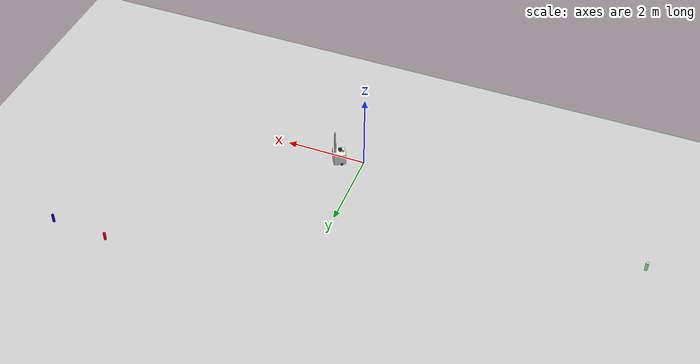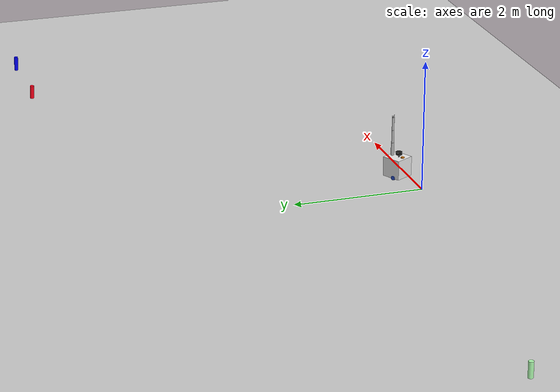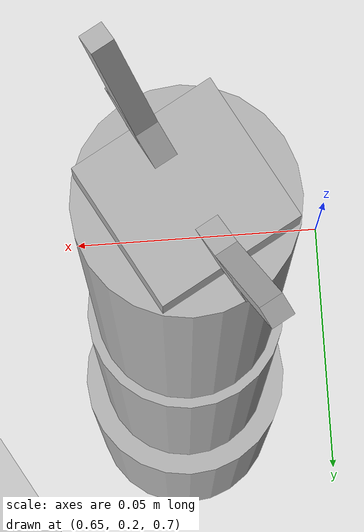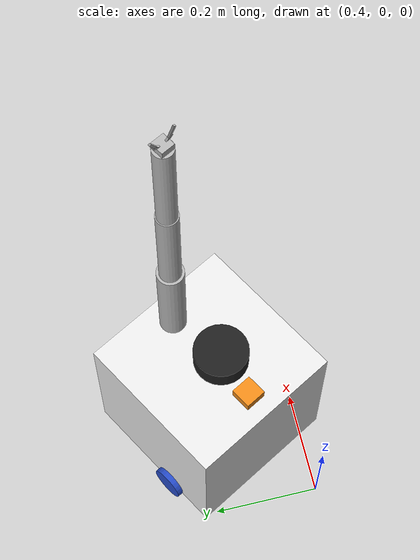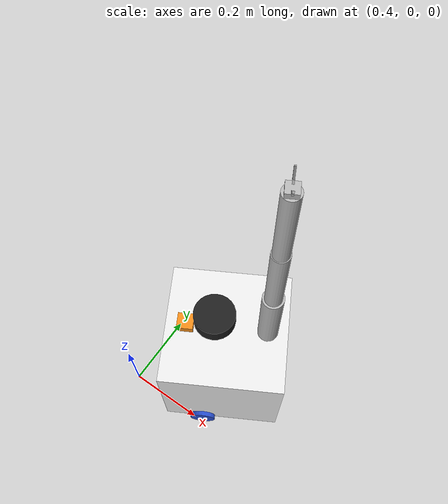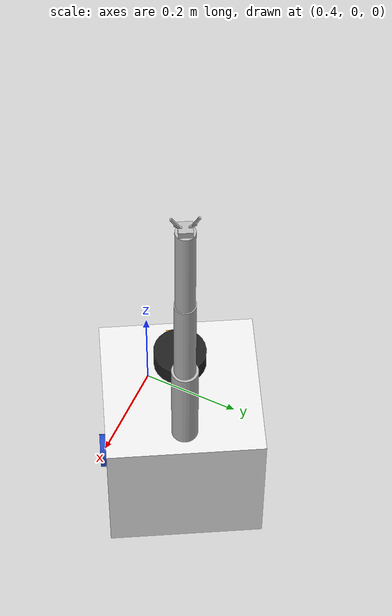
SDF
<sdf version="1.7">
 <world name="default">
  <model name="ground_plane">
   <static>1</static>
   <link name="link">
    <collision name="collision">
     <geometry><plane><normal>0 0 1</normal><size>100 100</size></plane></geometry>
     <surface><friction><ode><mu>100</mu><mu2>50</mu2></ode></friction></surface>
    </collision>
    <visual name="visual">
     <cast_shadows>0</cast_shadows>
     <geometry><plane><normal>0 0 1</normal><size>100 100</size></plane></geometry>
     <material>
      <script><uri>file://media/materials/scripts/gazebo.material</uri><name>Gazebo/Grey</name></script>
     </material>
    </visual>
   </link>
  </model>
  <light name="sun" type="directional">
   <pose>0 0 10 0 -0 0</pose>
   <diffuse>0.8 0.8 0.8 1</diffuse>
   <specular>0.2 0.2 0.2 1</specular>
   <attenuation>
    <range>1000</range>
    <constant>0.9</constant>
    <linear>0.01</linear>
    <quadratic>0.001</quadratic>
   </attenuation>
   <direction>-0.5 0.1 -0.9</direction>
   <spot><inner_angle>0</inner_angle><outer_angle>0</outer_angle><falloff>0</falloff></spot>
  </light>
  <scene><shadows>0</shadows><ambient>0.4 0.4 0.4 1</ambient><background>0.7 0.7 0.7 1</background></scene>
  <physics type="ode">
   <real_time_update_rate>1000</real_time_update_rate>
   <max_step_size>0.001</max_step_size>
   <real_time_factor>1</real_time_factor>
   <ode>
    <solver>
     <type>quick</type>
     <iters>150</iters>
     <precon_iters>0</precon_iters>
     <sor>1.4</sor>
     <use_dynamic_moi_rescaling>1</use_dynamic_moi_rescaling>
    </solver>
    <constraints>
     <cfm>1e-05</cfm>
     <erp>0.2</erp>
     <contact_max_correcting_vel>2000</contact_max_correcting_vel>
     <contact_surface_layer>0.01</contact_surface_layer>
    </constraints>
   </ode>
  </physics>
  <gravity>0 0 -9.8</gravity>
  <magnetic_field>6e-06 2.3e-05 -4.2e-05</magnetic_field>
  <atmosphere type="adiabatic"/>
  <audio><device>default</device></audio>
  <spherical_coordinates>
   <surface_model>EARTH_WGS84</surface_model>
   <latitude_deg>0</latitude_deg>
   <longitude_deg>0</longitude_deg>
   <elevation>0</elevation>
   <heading_deg>0</heading_deg>
  </spherical_coordinates>
  <model name="indoor_robot">
   <link name="base_link">
    <inertial>
     <pose>0.047411 0 0.159107 0 -0 0</pose>
     <mass>1.12</mass>
     <inertia>
      <ixx>0.0196194</ixx>
      <ixy>0</ixy>
      <ixz>0.000824189</ixz>
      <iyy>0.0198713</iyy>
      <iyz>0</iyz>
      <izz>0.0153839</izz>
     </inertia>
    </inertial>
    <collision name="base_link_fixed_joint_lump__chassis_collision">
     <pose>0.05 0 0.14 0 -0 0</pose>
     <geometry><box><size>0.3 0.3 0.3</size></box></geometry>
    </collision>
    <collision name="base_link_fixed_joint_lump__caster_wheel_collision_1">
     <pose>0.14 0 0 0 -0 0</pose>
     <geometry><sphere><radius>0.033</radius></sphere></geometry>
     <surface><friction><ode><mu>0.001</mu><mu2>0.001</mu2></ode></friction></surface>
    </collision>
    <collision name="base_link_fixed_joint_lump__imu_link_collision_2">
     <pose>-0.05 0 0.3 0 -0 0</pose>
     <geometry><box><size>0.04 0.04 0.02</size></box></geometry>
    </collision>
    <collision name="base_link_fixed_joint_lump__laser_frame_collision_3">
     <pose>0.022 0 0.352 0 -0 0</pose>
     <geometry><cylinder><length>0.04</length><radius>0.05</radius></cylinder></geometry>
    </collision>
    <visual name="base_link_fixed_joint_lump__chassis_visual">
     <pose>0.05 0 0.14 0 -0 0</pose>
     <geometry><box><size>0.3 0.3 0.3</size></box></geometry>
     <material>
      <script><name>Gazebo/White</name><uri>file://media/materials/scripts/gazebo.material</uri></script>
     </material>
    </visual>
    <visual name="base_link_fixed_joint_lump__caster_wheel_visual_1">
     <pose>0.14 0 0 0 -0 0</pose>
     <geometry><sphere><radius>0.033</radius></sphere></geometry>
     <material>
      <script><name>Gazebo/Black</name><uri>file://media/materials/scripts/gazebo.material</uri></script>
     </material>
    </visual>
    <visual name="base_link_fixed_joint_lump__imu_link_visual_2">
     <pose>-0.05 0 0.3 0 -0 0</pose>
     <geometry><box><size>0.04 0.04 0.02</size></box></geometry>
     <material>
      <script><name>Gazebo/Orange</name><uri>file://media/materials/scripts/gazebo.material</uri></script>
     </material>
    </visual>
    <visual name="base_link_fixed_joint_lump__laser_frame_visual_3">
     <pose>0.022 0 0.352 0 -0 0</pose>
     <geometry><cylinder><length>0.04</length><radius>0.05</radius></cylinder></geometry>
     <material>
      <script><name>Gazebo/Black</name><uri>file://media/materials/scripts/gazebo.material</uri></script>
     </material>
    </visual>
    <visual name="base_link_fixed_joint_lump__laser_frame_visual_4">
     <pose>0.022 0 0.302 0 -0 0</pose>
     <geometry><cylinder><length>0.1</length><radius>0.01</radius></cylinder></geometry>
     <material>
      <script><name>Gazebo/Black</name><uri>file://media/materials/scripts/gazebo.material</uri></script>
     </material>
    </visual>
    <sensor name="imu_sensor" type="imu">
     <plugin name="imu_plugin" filename="libgazebo_ros_imu_sensor.so">
      <ros><namespace>/demo</namespace><remapping>~/out:=imu</remapping></ros>
      <initial_orientation_as_reference>0</initial_orientation_as_reference>
     </plugin>
     <always_on>1</always_on>
     <update_rate>100</update_rate>
     <visualize>1</visualize>
     <imu>
      <angular_velocity>
       <x>
        <noise type="gaussian">
         <mean>0</mean>
         <stddev>0.0002</stddev>
         <bias_mean>7.5e-06</bias_mean>
         <bias_stddev>8e-07</bias_stddev>
        </noise>
       </x>
       <y>
        <noise type="gaussian">
         <mean>0</mean>
         <stddev>0.0002</stddev>
         <bias_mean>7.5e-06</bias_mean>
         <bias_stddev>8e-07</bias_stddev>
        </noise>
       </y>
       <z>
        <noise type="gaussian">
         <mean>0</mean>
         <stddev>0.0002</stddev>
         <bias_mean>7.5e-06</bias_mean>
         <bias_stddev>8e-07</bias_stddev>
        </noise>
       </z>
      </angular_velocity>
      <linear_acceleration>
       <x>
        <noise type="gaussian">
         <mean>0</mean>
         <stddev>0.017</stddev>
         <bias_mean>0.1</bias_mean>
         <bias_stddev>0.001</bias_stddev>
        </noise>
       </x>
       <y>
        <noise type="gaussian">
         <mean>0</mean>
         <stddev>0.017</stddev>
         <bias_mean>0.1</bias_mean>
         <bias_stddev>0.001</bias_stddev>
        </noise>
       </y>
       <z>
        <noise type="gaussian">
         <mean>0</mean>
         <stddev>0.017</stddev>
         <bias_mean>0.1</bias_mean>
         <bias_stddev>0.001</bias_stddev>
        </noise>
       </z>
      </linear_acceleration>
     </imu>
     <pose>-0.05 0 0.3 0 -0 0</pose>
    </sensor>
    <sensor name="laser" type="ray">
     <visualize>1</visualize>
     <update_rate>10</update_rate>
     <ray>
      <scan>
       <horizontal>
        <samples>360</samples>
        <min_angle>-3.14</min_angle>
        <max_angle>3.14</max_angle>
        <resolution>1</resolution>
       </horizontal>
       <vertical><samples>1</samples><min_angle>0</min_angle><max_angle>0</max_angle></vertical>
      </scan>
      <range><min>0.3</min><max>12</max></range>
     </ray>
     <plugin name="laser_controller" filename="libgazebo_ros_ray_sensor.so">
      <ros><argument>~/out:=scan</argument></ros>
      <output_type>sensor_msgs/LaserScan</output_type>
      <frame_name>laser_frame</frame_name>
     </plugin>
     <pose>0.022 0 0.352 0 -0 0</pose>
    </sensor>
   </link>
   <joint name="hip" type="revolute">
    <pose relative_to="base_link">0.15 0 0.29 0 -0 0</pose>
    <parent>base_link</parent>
    <child>torso</child>
    <axis>
     <xyz>0 0 1</xyz>
     <limit><lower>-1e+16</lower><upper>1e+16</upper></limit>
     <dynamics><spring_reference>0</spring_reference><spring_stiffness>0</spring_stiffness></dynamics>
    </axis>
   </joint>
   <link name="torso">
    <pose relative_to="hip">0 0 0 0 -0 0</pose>
    <inertial>
     <pose>0 0 0.1 0 -0 0</pose>
     <mass>0.05</mass>
     <inertia><ixx>0.0001</ixx><ixy>0</ixy><ixz>0</ixz><iyy>0.0001</iyy><iyz>0</iyz><izz>5e-05</izz></inertia>
    </inertial>
    <collision name="torso_collision">
     <pose>0 0 0.1 0 -0 0</pose>
     <geometry><cylinder><length>0.2</length><radius>0.025</radius></cylinder></geometry>
    </collision>
    <visual name="torso_visual">
     <pose>0 0 0.1 0 -0 0</pose>
     <geometry><cylinder><length>0.2</length><radius>0.025</radius></cylinder></geometry>
    </visual>
   </link>
   <joint name="shoulder" type="revolute">
    <pose relative_to="torso">0 0 0.2 0 -0 0</pose>
    <parent>torso</parent>
    <child>upper_arm</child>
    <axis>
     <xyz>0 1 0</xyz>
     <limit><lower>-1.5708</lower><upper>1.5708</upper><effort>10</effort><velocity>1</velocity></limit>
     <dynamics><spring_reference>0</spring_reference><spring_stiffness>0</spring_stiffness></dynamics>
    </axis>
   </joint>
   <link name="upper_arm">
    <pose relative_to="shoulder">0 0 0 0 -0 0</pose>
    <inertial>
     <pose>0 0 0.1 0 -0 0</pose>
     <mass>0.03</mass>
     <inertia><ixx>8e-05</ixx><ixy>0</ixy><ixz>0</ixz><iyy>8e-05</iyy><iyz>0</iyz><izz>2e-05</izz></inertia>
    </inertial>
    <collision name="upper_arm_collision">
     <pose>0 0 0.1 0 -0 0</pose>
     <geometry><cylinder><length>0.2</length><radius>0.02</radius></cylinder></geometry>
    </collision>
    <visual name="upper_arm_visual">
     <pose>0 0 0.1 0 -0 0</pose>
     <geometry><cylinder><length>0.2</length><radius>0.02</radius></cylinder></geometry>
    </visual>
   </link>
   <joint name="elbow" type="revolute">
    <pose relative_to="upper_arm">0 0 0.2 0 -0 0</pose>
    <parent>upper_arm</parent>
    <child>lower_arm</child>
    <axis>
     <xyz>0 1 0</xyz>
     <limit><lower>-1.5708</lower><upper>1.5708</upper><effort>10</effort><velocity>1</velocity></limit>
     <dynamics><spring_reference>0</spring_reference><spring_stiffness>0</spring_stiffness></dynamics>
    </axis>
   </joint>
   <link name="lower_arm">
    <pose relative_to="elbow">0 0 0 0 -0 0</pose>
    <inertial>
     <pose>0 0 0.1 0 -0 0</pose>
     <mass>0.02</mass>
     <inertia><ixx>4e-05</ixx><ixy>0</ixy><ixz>0</ixz><iyy>4e-05</iyy><iyz>0</iyz><izz>1e-05</izz></inertia>
    </inertial>
    <collision name="lower_arm_collision">
     <pose>0 0 0.1 0 -0 0</pose>
     <geometry><cylinder><length>0.2</length><radius>0.018</radius></cylinder></geometry>
    </collision>
    <visual name="lower_arm_visual">
     <pose>0 0 0.1 0 -0 0</pose>
     <geometry><cylinder><length>0.2</length><radius>0.018</radius></cylinder></geometry>
    </visual>
   </link>
   <joint name="wrist" type="revolute">
    <pose relative_to="lower_arm">0 0 0.2 0 -0 0</pose>
    <parent>lower_arm</parent>
    <child>hand</child>
    <axis>
     <xyz>0 1 0</xyz>
     <limit><lower>-1e+16</lower><upper>1e+16</upper></limit>
     <dynamics><spring_reference>0</spring_reference><spring_stiffness>0</spring_stiffness></dynamics>
    </axis>
   </joint>
   <link name="hand">
    <pose relative_to="wrist">0 0 0 0 -0 0</pose>
    <inertial>
     <mass>0.01</mass>
     <inertia><ixx>1e-05</ixx><ixy>0</ixy><ixz>0</ixz><iyy>1e-05</iyy><iyz>0</iyz><izz>1e-05</izz></inertia>
    </inertial>
    <collision name="hand_collision"><geometry><box><size>0.025 0.025 0.025</size></box></geometry></collision>
    <visual name="hand_visual"><geometry><box><size>0.025 0.025 0.025</size></box></geometry></visual>
   </link>
   <joint name="l_g_base" type="revolute">
    <pose relative_to="hand">0 0.012 0.015 -0.9162 0 0</pose>
    <parent>hand</parent>
    <child>left_gripper_base</child>
    <axis>
     <xyz>1 0 0</xyz>
     <limit><lower>0</lower><upper>0.5236</upper><effort>5</effort><velocity>1</velocity></limit>
     <dynamics><spring_reference>0</spring_reference><spring_stiffness>0</spring_stiffness></dynamics>
    </axis>
   </joint>
   <link name="left_gripper_base">
    <pose relative_to="l_g_base">0 0 0 0 -0 0</pose>
    <inertial>
     <pose>0 -0.001333 0.003333 0 -0 0</pose>
     <mass>0.0015</mass>
     <inertia>
      <ixx>5.86667e-08</ixx>
      <ixy>0</ixy>
      <ixz>0</ixz>
      <iyy>5.33333e-08</iyy>
      <iyz>1.33333e-08</iyz>
      <izz>2.53333e-08</izz>
     </inertia>
    </inertial>
    <collision name="left_gripper_base_collision">
     <geometry><box><size>0.004 0.004 0.015</size></box></geometry>
    </collision>
    <collision name="left_gripper_base_fixed_joint_lump__left_gripper_finger_collision_1">
     <pose>0 -0.004 0.01 0.3926 -0 0</pose>
     <geometry><box><size>0.004 0.004 0.025</size></box></geometry>
    </collision>
    <visual name="left_gripper_base_visual">
     <geometry><box><size>0.004 0.004 0.015</size></box></geometry>
    </visual>
    <visual name="left_gripper_base_fixed_joint_lump__left_gripper_finger_visual_1">
     <pose>0 -0.004 0.01 0.3926 -0 0</pose>
     <geometry><box><size>0.004 0.004 0.025</size></box></geometry>
    </visual>
   </link>
   <joint name="r_g_base" type="revolute">
    <pose relative_to="hand">0 -0.012 0.015 0.9162 -0 0</pose>
    <parent>hand</parent>
    <child>right_gripper_base</child>
    <axis>
     <xyz>1 0 0</xyz>
     <limit><lower>-0.5236</lower><upper>0</upper><effort>5</effort><velocity>1</velocity></limit>
     <dynamics><spring_reference>0</spring_reference><spring_stiffness>0</spring_stiffness></dynamics>
    </axis>
   </joint>
   <link name="right_gripper_base">
    <pose relative_to="r_g_base">0 0 0 0 -0 0</pose>
    <inertial>
     <pose>0 0.001333 0.003333 0 -0 0</pose>
     <mass>0.0015</mass>
     <inertia>
      <ixx>5.86667e-08</ixx>
      <ixy>0</ixy>
      <ixz>0</ixz>
      <iyy>5.33333e-08</iyy>
      <iyz>-1.33333e-08</iyz>
      <izz>2.53333e-08</izz>
     </inertia>
    </inertial>
    <collision name="right_gripper_base_collision">
     <geometry><box><size>0.004 0.004 0.015</size></box></geometry>
    </collision>
    <collision name="right_gripper_base_fixed_joint_lump__right_gripper_finger_collision_1">
     <pose>0 0.004 0.01 -0.3926 0 0</pose>
     <geometry><box><size>0.004 0.004 0.025</size></box></geometry>
    </collision>
    <visual name="right_gripper_base_visual">
     <geometry><box><size>0.004 0.004 0.015</size></box></geometry>
    </visual>
    <visual name="right_gripper_base_fixed_joint_lump__right_gripper_finger_visual_1">
     <pose>0 0.004 0.01 -0.3926 0 0</pose>
     <geometry><box><size>0.004 0.004 0.025</size></box></geometry>
    </visual>
   </link>
   <joint name="left_wheel_joint" type="revolute">
    <pose relative_to="base_link">0 0.1485 0 -1.57079 0 0</pose>
    <parent>base_link</parent>
    <child>left_wheel</child>
    <axis>
     <xyz>0 0 1</xyz>
     <limit><lower>-1e+16</lower><upper>1e+16</upper></limit>
     <dynamics><spring_reference>0</spring_reference><spring_stiffness>0</spring_stiffness></dynamics>
    </axis>
   </joint>
   <link name="left_wheel">
    <pose relative_to="left_wheel_joint">0 0 0 0 -0 0</pose>
    <inertial>
     <mass>0.05</mass>
     <inertia>
      <ixx>1.64292e-05</ixx>
      <ixy>0</ixy>
      <ixz>0</ixz>
      <iyy>1.64292e-05</iyy>
      <iyz>0</iyz>
      <izz>2.7225e-05</izz>
     </inertia>
    </inertial>
    <collision name="left_wheel_collision">
     <geometry><sphere><radius>0.033</radius></sphere></geometry>
    </collision>
    <visual name="left_wheel_visual">
     <geometry><cylinder><length>0.026</length><radius>0.033</radius></cylinder></geometry>
     <material>
      <script><name>Gazebo/Blue</name><uri>file://media/materials/scripts/gazebo.material</uri></script>
     </material>
    </visual>
   </link>
   <joint name="right_wheel_joint" type="revolute">
    <pose relative_to="base_link">0 -0.1485 0 1.57079 -0 0</pose>
    <parent>base_link</parent>
    <child>right_wheel</child>
    <axis>
     <xyz>0 0 -1</xyz>
     <limit><lower>-1e+16</lower><upper>1e+16</upper></limit>
     <dynamics><spring_reference>0</spring_reference><spring_stiffness>0</spring_stiffness></dynamics>
    </axis>
   </joint>
   <link name="right_wheel">
    <pose relative_to="right_wheel_joint">0 0 0 0 -0 0</pose>
    <inertial>
     <mass>0.05</mass>
     <inertia>
      <ixx>1.64292e-05</ixx>
      <ixy>0</ixy>
      <ixz>0</ixz>
      <iyy>1.64292e-05</iyy>
      <iyz>0</iyz>
      <izz>2.7225e-05</izz>
     </inertia>
    </inertial>
    <collision name="right_wheel_collision">
     <geometry><sphere><radius>0.033</radius></sphere></geometry>
    </collision>
    <visual name="right_wheel_visual">
     <geometry><cylinder><length>0.026</length><radius>0.033</radius></cylinder></geometry>
     <material>
      <script><name>Gazebo/Blue</name><uri>file://media/materials/scripts/gazebo.material</uri></script>
     </material>
    </visual>
   </link>
   <static>0</static>
   <plugin name="diff_drive" filename="libgazebo_ros_diff_drive.so">
    <left_joint>left_wheel_joint</left_joint>
    <right_joint>right_wheel_joint</right_joint>
    <wheel_separation>0.297</wheel_separation>
    <wheel_diameter>0.066</wheel_diameter>
    <max_wheel_torque>200</max_wheel_torque>
    <max_wheel_acceleration>10.0</max_wheel_acceleration>
    <odometry_frame>odom</odometry_frame>
    <robot_base_frame>base_link</robot_base_frame>
    <publish_odom>1</publish_odom>
    <publish_odom_tf>1</publish_odom_tf>
    <publish_wheel_tf>1</publish_wheel_tf>
    <update_rate>30</update_rate>
   </plugin>
   <pose>0.547778 0.143577 0.032999 -4e-06 -8e-06 0.511354</pose>
  </model>
  <model name="unit_cylinder_1">
   <link name="link">
    <inertial>
     <mass>1</mass>
     <inertia><ixx>0.145833</ixx><ixy>0</ixy><ixz>0</ixz><iyy>0.145833</iyy><iyz>0</iyz><izz>0.125</izz></inertia>
    </inertial>
    <visual name="visual">
     <geometry><cylinder><radius>0.0310353</radius><length>0.203416</length></cylinder></geometry>
     <material>
      <script><name>Gazebo/Grey</name><uri>file://media/materials/scripts/gazebo.material</uri></script>
      <shader type="pixel"><normal_map>__default__</normal_map></shader>
      <ambient>1 0 0 0</ambient>
      <diffuse>1 0 0.1 0</diffuse>
      <specular>0.01 0.01 0.01 1</specular>
      <emissive>0 0 0 1</emissive>
     </material>
    </visual>
    <collision name="collision">
     <geometry><cylinder><radius>0.031035</radius><length>0.203416</length></cylinder></geometry>
     <surface>
      <friction>
       <ode><mu>1</mu><mu2>1</mu2><fdir1>0 0 0</fdir1><slip1>0</slip1><slip2>0</slip2></ode>
       <torsional>
        <coefficient>1</coefficient>
        <patch_radius>0</patch_radius>
        <surface_radius>0</surface_radius>
        <use_patch_radius>1</use_patch_radius>
        <ode><slip>0</slip></ode>
       </torsional>
      </friction>
      <bounce><restitution_coefficient>0</restitution_coefficient><threshold>1e+06</threshold></bounce>
      <contact>
       <collide_without_contact>0</collide_without_contact>
       <collide_without_contact_bitmask>1</collide_without_contact_bitmask>
       <collide_bitmask>1</collide_bitmask>
       <ode>
        <soft_cfm>0</soft_cfm>
        <soft_erp>0.2</soft_erp>
        <kp>1e+13</kp>
        <kd>1</kd>
        <max_vel>0.01</max_vel>
        <min_depth>0</min_depth>
       </ode>
       <bullet>
        <split_impulse>1</split_impulse>
        <split_impulse_penetration_threshold>-0.01</split_impulse_penetration_threshold>
        <soft_cfm>0</soft_cfm>
        <soft_erp>0.2</soft_erp>
        <kp>1e+13</kp>
        <kd>1</kd>
       </bullet>
      </contact>
     </surface>
    </collision>
   </link>
   <static>0</static>
   <pose>4.39992 4.8868 0.541704 9.3e-05 0.000167 -0.000146</pose>
  </model>
  <model name="unit_cylinder_0">
   <link name="link">
    <inertial>
     <mass>1</mass>
     <inertia><ixx>0.145833</ixx><ixy>0</ixy><ixz>0</ixz><iyy>0.145833</iyy><iyz>0</iyz><izz>0.125</izz></inertia>
    </inertial>
    <visual name="visual">
     <geometry><cylinder><radius>0.0303396</radius><length>0.218878</length></cylinder></geometry>
     <material>
      <script><name>Gazebo/Grey</name><uri>file://media/materials/scripts/gazebo.material</uri></script>
      <shader type="pixel"><normal_map>__default__</normal_map></shader>
      <ambient>0 0 1 0</ambient>
      <diffuse>0 0 1 0</diffuse>
      <specular>0.01 0.01 0.01 1</specular>
      <emissive>0 0 0 1</emissive>
     </material>
    </visual>
    <collision name="collision">
     <geometry><cylinder><radius>0.03034</radius><length>0.218878</length></cylinder></geometry>
     <surface>
      <friction>
       <ode><mu>1</mu><mu2>1</mu2><fdir1>0 0 0</fdir1><slip1>0</slip1><slip2>0</slip2></ode>
       <torsional>
        <coefficient>1</coefficient>
        <patch_radius>0</patch_radius>
        <surface_radius>0</surface_radius>
        <use_patch_radius>1</use_patch_radius>
        <ode><slip>0</slip></ode>
       </torsional>
      </friction>
      <bounce><restitution_coefficient>0</restitution_coefficient><threshold>1e+06</threshold></bounce>
      <contact>
       <collide_without_contact>0</collide_without_contact>
       <collide_without_contact_bitmask>1</collide_without_contact_bitmask>
       <collide_bitmask>1</collide_bitmask>
       <ode>
        <soft_cfm>0</soft_cfm>
        <soft_erp>0.2</soft_erp>
        <kp>1e+13</kp>
        <kd>1</kd>
        <max_vel>0.01</max_vel>
        <min_depth>0</min_depth>
       </ode>
       <bullet>
        <split_impulse>1</split_impulse>
        <split_impulse_penetration_threshold>-0.01</split_impulse_penetration_threshold>
        <soft_cfm>0</soft_cfm>
        <soft_erp>0.2</soft_erp>
        <kp>1e+13</kp>
        <kd>1</kd>
       </bullet>
      </contact>
     </surface>
    </collision>
   </link>
   <static>0</static>
   <pose>5.76637 4.83387 0.549438 7.6e-05 9.3e-05 -0.000397</pose>
  </model>
  <model name="unit_cylinder_2">
   <link name="link">
    <inertial>
     <mass>1</mass>
     <inertia><ixx>0.145833</ixx><ixy>0</ixy><ixz>0</ixz><iyy>0.145833</iyy><iyz>0</iyz><izz>0.125</izz></inertia>
    </inertial>
    <visual name="visual">
     <geometry><cylinder><radius>0.0363278</radius><length>0.22316</length></cylinder></geometry>
     <material>
      <script><name>Gazebo/Grey</name><uri>file://media/materials/scripts/gazebo.material</uri></script>
      <shader type="pixel"><normal_map>__default__</normal_map></shader>
      <ambient>0 1 0 0</ambient>
      <diffuse>0.7 1 0.7 1</diffuse>
      <specular>0.01 0.01 0.01 1</specular>
      <emissive>0 0 0 1</emissive>
     </material>
    </visual>
    <collision name="collision">
     <geometry><cylinder><radius>0.036328</radius><length>0.22316</length></cylinder></geometry>
     <surface>
      <friction>
       <ode><mu>1</mu><mu2>1</mu2><fdir1>0 0 0</fdir1><slip1>0</slip1><slip2>0</slip2></ode>
       <torsional>
        <coefficient>1</coefficient>
        <patch_radius>0</patch_radius>
        <surface_radius>0</surface_radius>
        <use_patch_radius>1</use_patch_radius>
        <ode><slip>0</slip></ode>
       </torsional>
      </friction>
      <bounce><restitution_coefficient>0</restitution_coefficient><threshold>1e+06</threshold></bounce>
      <contact>
       <collide_without_contact>0</collide_without_contact>
       <collide_without_contact_bitmask>1</collide_without_contact_bitmask>
       <collide_bitmask>1</collide_bitmask>
       <ode>
        <soft_cfm>0</soft_cfm>
        <soft_erp>0.2</soft_erp>
        <kp>1e+13</kp>
        <kd>1</kd>
        <max_vel>0.01</max_vel>
        <min_depth>0</min_depth>
       </ode>
       <bullet>
        <split_impulse>1</split_impulse>
        <split_impulse_penetration_threshold>-0.01</split_impulse_penetration_threshold>
        <soft_cfm>0</soft_cfm>
        <soft_erp>0.2</soft_erp>
        <kp>1e+13</kp>
        <kd>1</kd>
       </bullet>
      </contact>
     </surface>
    </collision>
   </link>
   <static>0</static>
   <pose>-7.13476 1.41082 0.631588 0.000227 3.5e-05 -5e-06</pose>
  </model>
 </world>
</sdf>
